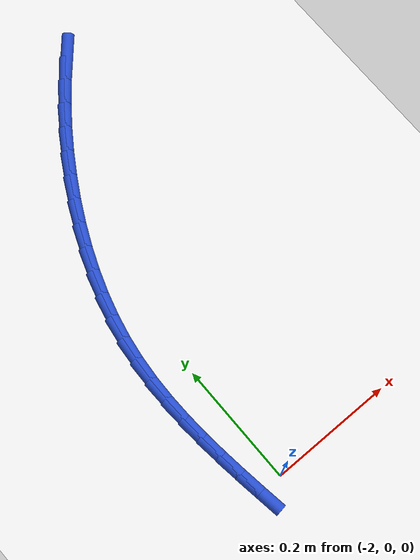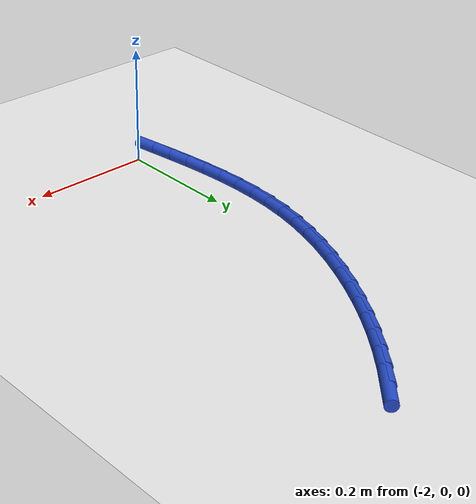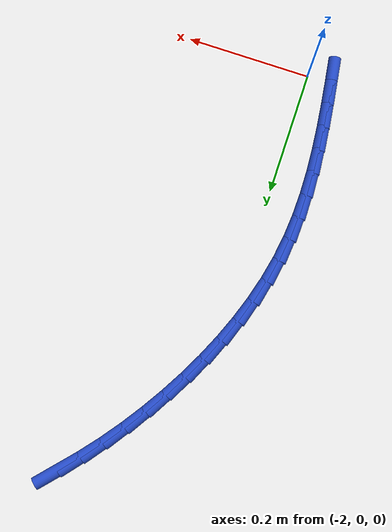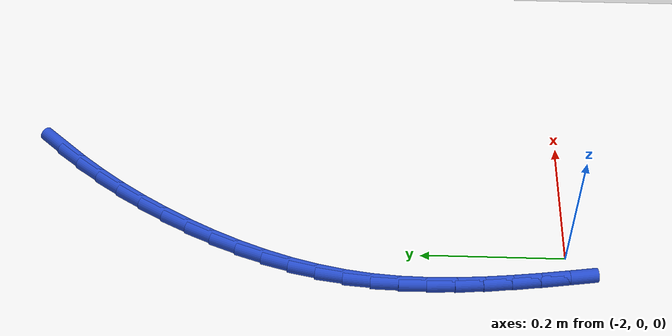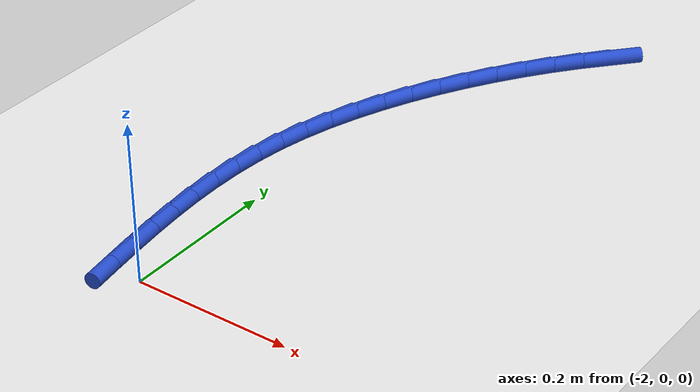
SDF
<sdf version="1.6">
 <world name="default">
  <model name="ground_plane">
   <static>1</static>
   <link name="link">
    <collision name="collision">
     <geometry><plane><normal>0 0 1</normal><size>100 100</size></plane></geometry>
     <surface><friction><ode><mu>100</mu><mu2>50</mu2></ode></friction></surface>
    </collision>
    <visual name="visual">
     <cast_shadows>0</cast_shadows>
     <geometry><plane><normal>0 0 1</normal><size>100 100</size></plane></geometry>
     <material>
      <script><uri>file://media/materials/scripts/gazebo.material</uri><name>Gazebo/WhiteGlow</name></script>
     </material>
    </visual>
   </link>
  </model>
  <model name="line">
   <link name="link_65">
    <pose>-1.8266397293916967 0.7146563926786768 0.01 0 1.57 0.8380144245530833</pose>
    <collision name="collision">
     <geometry><cylinder><radius>0.01</radius><length>0.08</length></cylinder></geometry>
    </collision>
    <visual name="visual">
     <material>
      <script><name>Gazebo/Blue</name><uri>file://media/materials/scripts/gazebo.material</uri></script>
     </material>
     <geometry><cylinder><radius>0.01</radius><length>0.08</length></cylinder></geometry>
    </visual>
   </link>
   <link name="link_66">
    <pose>-1.8530414470404848 0.6853191921197941 0.01 0 1.57 0.8828062135947151</pose>
    <collision name="collision">
     <geometry><cylinder><radius>0.01</radius><length>0.08</length></cylinder></geometry>
    </collision>
    <visual name="visual">
     <material>
      <script><name>Gazebo/Blue</name><uri>file://media/materials/scripts/gazebo.material</uri></script>
     </material>
     <geometry><cylinder><radius>0.01</radius><length>0.08</length></cylinder></geometry>
    </visual>
   </link>
   <link name="link_67">
    <pose>-1.8782010359467025 0.6547100313585756 0.01 0 1.57 0.9262358215345126</pose>
    <collision name="collision">
     <geometry><cylinder><radius>0.01</radius><length>0.08</length></cylinder></geometry>
    </collision>
    <visual name="visual">
     <material>
      <script><name>Gazebo/Blue</name><uri>file://media/materials/scripts/gazebo.material</uri></script>
     </material>
     <geometry><cylinder><radius>0.01</radius><length>0.08</length></cylinder></geometry>
    </visual>
   </link>
   <link name="link_68">
    <pose>-1.9020798469608835 0.6229417873811934 0.01 0 1.57 0.968520373437604</pose>
    <collision name="collision">
     <geometry><cylinder><radius>0.01</radius><length>0.08</length></cylinder></geometry>
    </collision>
    <visual name="visual">
     <material>
      <script><name>Gazebo/Blue</name><uri>file://media/materials/scripts/gazebo.material</uri></script>
     </material>
     <geometry><cylinder><radius>0.01</radius><length>0.08</length></cylinder></geometry>
    </visual>
   </link>
   <link name="link_69">
    <pose>-1.9246392309335598 0.5901273371738209 0.01 0 1.57 1.009878954382426</pose>
    <collision name="collision">
     <geometry><cylinder><radius>0.01</radius><length>0.08</length></cylinder></geometry>
    </collision>
    <visual name="visual">
     <material>
      <script><name>Gazebo/Blue</name><uri>file://media/materials/scripts/gazebo.material</uri></script>
     </material>
     <geometry><cylinder><radius>0.01</radius><length>0.08</length></cylinder></geometry>
    </visual>
   </link>
   <link name="link_70">
    <pose>-1.9458405387152649 0.5563795577226305 0.01 0 1.57 1.0507747737547097</pose>
    <collision name="collision">
     <geometry><cylinder><radius>0.01</radius><length>0.08</length></cylinder></geometry>
    </collision>
    <visual name="visual">
     <material>
      <script><name>Gazebo/Blue</name><uri>file://media/materials/scripts/gazebo.material</uri></script>
     </material>
     <geometry><cylinder><radius>0.01</radius><length>0.08</length></cylinder></geometry>
    </visual>
   </link>
   <link name="link_71">
    <pose>-1.9656343075133342 0.5218107506079419 0.01 0 1.57 1.0933238342998646</pose>
    <collision name="collision">
     <geometry><cylinder><radius>0.01</radius><length>0.08</length></cylinder></geometry>
    </collision>
    <visual name="visual">
     <material>
      <script><name>Gazebo/Blue</name><uri>file://media/materials/scripts/gazebo.material</uri></script>
     </material>
     <geometry><cylinder><radius>0.01</radius><length>0.08</length></cylinder></geometry>
    </visual>
   </link>
   <link name="link_72">
    <pose>-1.9838892445343146 0.4865288631456937 0.01 0 1.57 1.1387741753433998</pose>
    <collision name="collision">
     <geometry><cylinder><radius>0.01</radius><length>0.08</length></cylinder></geometry>
    </collision>
    <visual name="visual">
     <material>
      <script><name>Gazebo/Blue</name><uri>file://media/materials/scripts/gazebo.material</uri></script>
     </material>
     <geometry><cylinder><radius>0.01</radius><length>0.08</length></cylinder></geometry>
    </visual>
   </link>
   <link name="link_73">
    <pose>-2.0004366194129575 0.45063985055743583 0.01 0 1.57 1.1875730688106443</pose>
    <collision name="collision">
     <geometry><cylinder><radius>0.01</radius><length>0.08</length></cylinder></geometry>
    </collision>
    <visual name="visual">
     <material>
      <script><name>Gazebo/Blue</name><uri>file://media/materials/scripts/gazebo.material</uri></script>
     </material>
     <geometry><cylinder><radius>0.01</radius><length>0.08</length></cylinder></geometry>
    </visual>
   </link>
   <link name="link_74">
    <pose>-2.015107508253352 0.4142496577667377 0.01 0 1.57 1.2401747007690214</pose>
    <collision name="collision">
     <geometry><cylinder><radius>0.01</radius><length>0.08</length></cylinder></geometry>
    </collision>
    <visual name="visual">
     <material>
      <script><name>Gazebo/Blue</name><uri>file://media/materials/scripts/gazebo.material</uri></script>
     </material>
     <geometry><cylinder><radius>0.01</radius><length>0.08</length></cylinder></geometry>
    </visual>
   </link>
   <link name="link_75">
    <pose>-2.0277329871595873 0.37746422969717036 0.01 0 1.57 1.2970318339333344</pose>
    <collision name="collision">
     <geometry><cylinder><radius>0.01</radius><length>0.08</length></cylinder></geometry>
    </collision>
    <visual name="visual">
     <material>
      <script><name>Gazebo/Blue</name><uri>file://media/materials/scripts/gazebo.material</uri></script>
     </material>
     <geometry><cylinder><radius>0.01</radius><length>0.08</length></cylinder></geometry>
    </visual>
   </link>
   <link name="link_76">
    <pose>-2.038144132235754 0.3403895112723036 0.01 0 1.57 1.3585737376439848</pose>
    <collision name="collision">
     <geometry><cylinder><radius>0.01</radius><length>0.08</length></cylinder></geometry>
    </collision>
    <visual name="visual">
     <material>
      <script><name>Gazebo/Blue</name><uri>file://media/materials/scripts/gazebo.material</uri></script>
     </material>
     <geometry><cylinder><radius>0.01</radius><length>0.08</length></cylinder></geometry>
    </visual>
   </link>
   <link name="link_77">
    <pose>-2.046172019585941 0.3031314474157074 0.01 0 1.57 1.4245852767962004</pose>
    <collision name="collision">
     <geometry><cylinder><radius>0.01</radius><length>0.08</length></cylinder></geometry>
    </collision>
    <visual name="visual">
     <material>
      <script><name>Gazebo/Blue</name><uri>file://media/materials/scripts/gazebo.material</uri></script>
     </material>
     <geometry><cylinder><radius>0.01</radius><length>0.08</length></cylinder></geometry>
    </visual>
   </link>
   <link name="link_78">
    <pose>-2.05167121678409 0.2657884794263393 0.01 0 1.57 1.4884284950947293</pose>
    <collision name="collision">
     <geometry><cylinder><radius>0.01</radius><length>0.08</length></cylinder></geometry>
    </collision>
    <visual name="visual">
     <material>
      <script><name>Gazebo/Blue</name><uri>file://media/materials/scripts/gazebo.material</uri></script>
     </material>
     <geometry><cylinder><radius>0.01</radius><length>0.08</length></cylinder></geometry>
    </visual>
   </link>
   <link name="link_79">
    <pose>-2.054759884293083 0.22837485199468757 0.01 0 1.57 1.5451654917937003</pose>
    <collision name="collision">
     <geometry><cylinder><radius>0.01</radius><length>0.08</length></cylinder></geometry>
    </collision>
    <visual name="visual">
     <material>
      <script><name>Gazebo/Blue</name><uri>file://media/materials/scripts/gazebo.material</uri></script>
     </material>
     <geometry><cylinder><radius>0.01</radius><length>0.08</length></cylinder></geometry>
    </visual>
   </link>
   <link name="link_80">
    <pose>-2.0557218396508423 0.19085189577420814 0.01 0 1.57 -1.5474841677003817</pose>
    <collision name="collision">
     <geometry><cylinder><radius>0.01</radius><length>0.08</length></cylinder></geometry>
    </collision>
    <visual name="visual">
     <material>
      <script><name>Gazebo/Blue</name><uri>file://media/materials/scripts/gazebo.material</uri></script>
     </material>
     <geometry><cylinder><radius>0.01</radius><length>0.08</length></cylinder></geometry>
    </visual>
   </link>
   <link name="link_81">
    <pose>-2.054843470110274 0.15318012060225936 0.01 0 1.57 -1.5066398636417966</pose>
    <collision name="collision">
     <geometry><cylinder><radius>0.01</radius><length>0.08</length></cylinder></geometry>
    </collision>
    <visual name="visual">
     <material>
      <script><name>Gazebo/Blue</name><uri>file://media/materials/scripts/gazebo.material</uri></script>
     </material>
     <geometry><cylinder><radius>0.01</radius><length>0.08</length></cylinder></geometry>
    </visual>
   </link>
   <link name="link_82">
    <pose>-2.0524111629242845 0.11532003631619978 0.01 0 1.57 -1.4739601371621038</pose>
    <collision name="collision">
     <geometry><cylinder><radius>0.01</radius><length>0.08</length></cylinder></geometry>
    </collision>
    <visual name="visual">
     <material>
      <script><name>Gazebo/Blue</name><uri>file://media/materials/scripts/gazebo.material</uri></script>
     </material>
     <geometry><cylinder><radius>0.01</radius><length>0.08</length></cylinder></geometry>
    </visual>
   </link>
   <link name="link_83">
    <pose>-2.048711305345778 0.07723215275338867 0.01 0 1.57 -1.4493528554021393</pose>
    <collision name="collision">
     <geometry><cylinder><radius>0.01</radius><length>0.08</length></cylinder></geometry>
    </collision>
    <visual name="visual">
     <material>
      <script><name>Gazebo/Blue</name><uri>file://media/materials/scripts/gazebo.material</uri></script>
     </material>
     <geometry><cylinder><radius>0.01</radius><length>0.08</length></cylinder></geometry>
    </visual>
   </link>
   <link name="link_84">
    <pose>-2.0440302846276612 0.03887697975118409 0.01 0 1.57 -1.4326359975624114</pose>
    <collision name="collision">
     <geometry><cylinder><radius>0.01</radius><length>0.08</length></cylinder></geometry>
    </collision>
    <visual name="visual">
     <material>
      <script><name>Gazebo/Blue</name><uri>file://media/materials/scripts/gazebo.material</uri></script>
     </material>
     <geometry><cylinder><radius>0.01</radius><length>0.08</length></cylinder></geometry>
    </visual>
   </link>
   <link name="link_85">
    <pose>-2.038654488022839 0.00021502714694554212 0.01 0 1.57 -1.423587799224604</pose>
    <collision name="collision">
     <geometry><cylinder><radius>0.01</radius><length>0.08</length></cylinder></geometry>
    </collision>
    <visual name="visual">
     <material>
      <script><name>Gazebo/Blue</name><uri>file://media/materials/scripts/gazebo.material</uri></script>
     </material>
     <geometry><cylinder><radius>0.01</radius><length>0.08</length></cylinder></geometry>
    </visual>
   </link>
  </model>
 </world>
</sdf>
